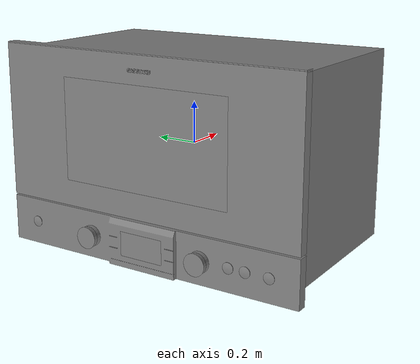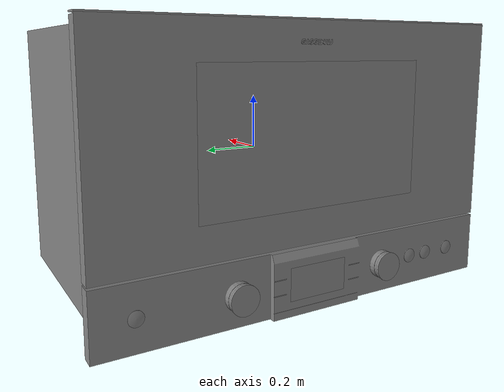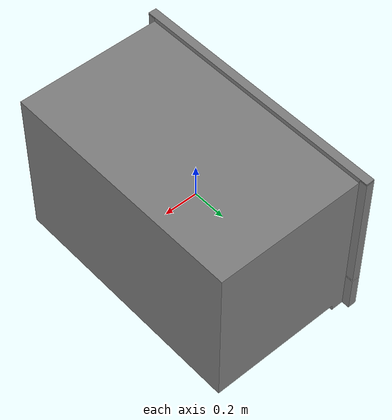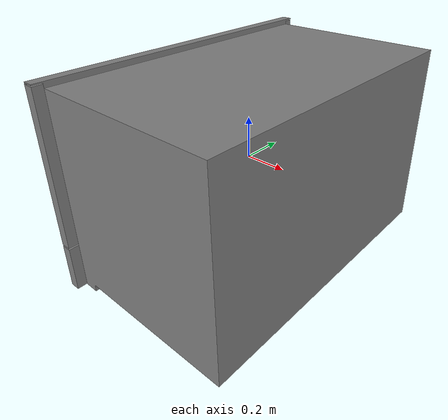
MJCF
<mujoco model="partnet_95bc6fb98624ea3229d75ea275a1cb4e">
    <compiler angle="radian" />
    <size njmax="500" nconmax="100" />
    <asset>
        <mesh name="original-22" file="original-22.stl" />
        <mesh name="original-18" file="original-18.stl" />
        <mesh name="original-20" file="original-20.stl" />
        <mesh name="original-21" file="original-21.stl" />
        <mesh name="original-23" file="original-23.stl" />
        <mesh name="original-10" file="original-10.stl" />
        <mesh name="original-11" file="original-11.stl" />
        <mesh name="original-16" file="original-16.stl" />
        <mesh name="original-1" file="original-1.stl" />
        <mesh name="original-12" file="original-12.stl" />
        <mesh name="original-13" file="original-13.stl" />
        <mesh name="original-14" file="original-14.stl" />
        <mesh name="original-15" file="original-15.stl" />
        <mesh name="original-8" file="original-8.stl" />
        <mesh name="original-7" file="original-7.stl" />
        <mesh name="original-6" file="original-6.stl" />
        <mesh name="original-5" file="original-5.stl" />
        <mesh name="original-4" file="original-4.stl" />
    </asset>
    <worldbody>
    <body>
        <body name="object" >
        <geom quat="0.5 0.5 -0.5 -0.5" type="mesh" group="0" mesh="original-16" contype="0" conaffinity="0"/>
        <geom quat="0.5 0.5 -0.5 -0.5" type="mesh" group="0" mesh="original-1" contype="0" conaffinity="0"/>
        <geom quat="0.5 0.5 -0.5 -0.5" type="mesh" group="0" mesh="original-12" contype="0" conaffinity="0"/>
        <geom quat="0.5 0.5 -0.5 -0.5" type="mesh" group="0" mesh="original-13" contype="0" conaffinity="0"/>
        <geom quat="0.5 0.5 -0.5 -0.5" type="mesh" group="0" mesh="original-14" contype="0" conaffinity="0"/>
        <geom quat="0.5 0.5 -0.5 -0.5" type="mesh" group="0" mesh="original-15" contype="0" conaffinity="0"/>
        <geom quat="0.5 0.5 -0.5 -0.5" type="mesh" group="0" mesh="original-8" contype="0" conaffinity="0"/>
        <geom quat="0.5 0.5 -0.5 -0.5" type="mesh" group="0" mesh="original-7" contype="0" conaffinity="0"/>
        <geom quat="0.5 0.5 -0.5 -0.5" type="mesh" group="0" mesh="original-6" contype="0" conaffinity="0"/>
        <geom quat="0.5 0.5 -0.5 -0.5" type="mesh" group="0" mesh="original-5" contype="0" conaffinity="0"/>
        <geom quat="0.5 0.5 -0.5 -0.5" type="mesh" group="0" mesh="original-4" contype="0" conaffinity="0"/>
        <body name="link_0" pos="-0.399982 -0.779037 -0.264485" quat="0.5 0.5 -0.5 -0.5" gravcomp="1">
            <inertial pos="-0.780432 0.358068 -0.00594134" quat="-0.000227368 0.707107 -0.000227368 0.707107" mass="55.3349" diaginertia="12.4802 10.1354 2.36575" />
            <joint name="joint_0" pos="0 0 0" axis="1 0 0" limited="true" range="0 1.5708" />
            <geom pos="-0.779037 0.264485 -0.399982" type="mesh" group="0" mesh="original-22" />
            <geom pos="-0.779037 0.264485 -0.399982" type="mesh" group="0" mesh="original-18" />
            <geom pos="-0.779037 0.264485 -0.399982" type="mesh" group="0" mesh="original-20" />
            <geom pos="-0.779037 0.264485 -0.399982" type="mesh" group="0" mesh="original-21" />
            <geom pos="-0.779037 0.264485 -0.399982" type="mesh" group="0" mesh="original-23" />
        </body>
        <body name="link_1" pos="-0.46242 0.30106 -0.401936" quat="0.5 0.5 -0.5 -0.5">
            <inertial pos="0.000721145 -2.00622e-05 -0.00896615" quat="0.0504976 0.705301 -0.0504949 0.705302" mass="0.167985" diaginertia="0.000238287 0.000124597 0.000124597" />
            <joint name="joint_1" pos="0 0 0" axis="0 0 1" />
            <geom pos="0.30106 0.401936 -0.46242" type="mesh" group="0" mesh="original-10" />
        </body>
        <body name="link_2" pos="-0.46242 -0.299094 -0.403055" quat="0.5 0.5 -0.5 -0.5">
            <inertial pos="-0.00154368 0.00109938 -0.00896614" quat="0.0197923 0.70683 -0.0197896 0.70683" mass="0.167985" diaginertia="0.000238286 0.000124597 0.000124596" />
            <joint name="joint_2" pos="0 0 0" axis="0 0 1" />
            <geom pos="-0.299094 0.403055 -0.46242" type="mesh" group="0" mesh="original-11" />
        </body>
    </body>
        <site name="bottom_site" pos="0 0 -0.3" rgba="0 0 0 0" size="0.005"/>
        <site name="top_site" pos="0 0 0.3" rgba="0 0 0 0" size="0.005"/>
        <site name="horizontal_radius_site" pos="0.3 0 0" rgba="0 0 0 0" size="0.1"/>
    </body>
    </worldbody>
</mujoco>
